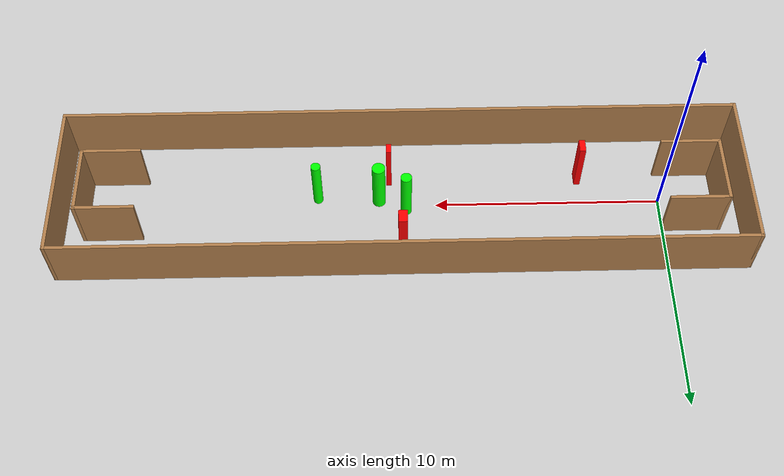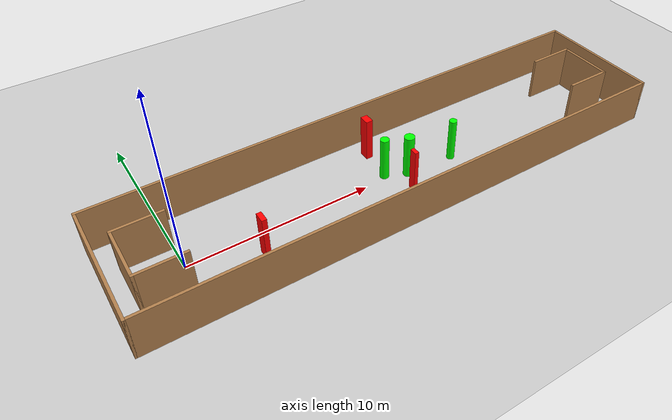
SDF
<sdf version="1.7">
 <world name="default">
  <light name="sun" type="directional">
   <pose>0 0 10 0 -0 0</pose>
   <diffuse>0.8 0.8 0.8 1</diffuse>
   <specular>0.2 0.2 0.2 1</specular>
   <attenuation>
    <range>1000</range>
    <constant>0.9</constant>
    <linear>0.01</linear>
    <quadratic>0.001</quadratic>
   </attenuation>
   <direction>-0.5 0.1 -0.9</direction>
   <spot><inner_angle>0</inner_angle><outer_angle>0</outer_angle><falloff>0</falloff></spot>
  </light>
  <model name="ground_plane">
   <static>1</static>
   <link name="link">
    <collision name="collision">
     <geometry><plane><normal>0 0 1</normal><size>100 100</size></plane></geometry>
     <surface>
      <contact><collide_bitmask>65535</collide_bitmask></contact>
      <friction><ode><mu>100</mu><mu2>50</mu2></ode></friction>
     </surface>
    </collision>
    <visual name="visual">
     <cast_shadows>0</cast_shadows>
     <geometry><plane><normal>0 0 1</normal><size>100 100</size></plane></geometry>
     <material>
      <script><uri>file://media/materials/scripts/gazebo.material</uri><name>Gazebo/Grey</name></script>
     </material>
    </visual>
   </link>
  </model>
  <gravity>0 0 -9.8</gravity>
  <magnetic_field>6e-06 2.3e-05 -4.2e-05</magnetic_field>
  <atmosphere type="adiabatic"/>
  <physics type="ode">
   <max_step_size>0.001</max_step_size>
   <real_time_factor>1</real_time_factor>
   <real_time_update_rate>1000</real_time_update_rate>
  </physics>
  <scene><ambient>0.4 0.4 0.4 1</ambient><background>0.7 0.7 0.7 1</background><shadows>1</shadows></scene>
  <spherical_coordinates>
   <surface_model>EARTH_WGS84</surface_model>
   <latitude_deg>0</latitude_deg>
   <longitude_deg>0</longitude_deg>
   <elevation>0</elevation>
   <heading_deg>0</heading_deg>
  </spherical_coordinates>
  <model name="my_base_walls">
   <link name="Wall_0">
    <collision name="Wall_0_Collision">
     <geometry><box><size>7.15 0.15 2.5</size></box></geometry>
     <pose>0 0 1.25 0 -0 0</pose>
    </collision>
    <visual name="Wall_0_Visual">
     <pose>0 0 1.25 0 -0 0</pose>
     <geometry><box><size>7.15 0.15 2.5</size></box></geometry>
     <material>
      <script><uri>file://media/materials/scripts/gazebo.material</uri><name>Gazebo/Wood</name></script>
      <ambient>1 1 1 1</ambient>
     </material>
     <meta><layer>0</layer></meta>
    </visual>
    <pose>-15 0 0 0 -0 1.5708</pose>
   </link>
   <link name="Wall_10">
    <collision name="Wall_10_Collision">
     <geometry><box><size>2.65 0.15 2.5</size></box></geometry>
     <pose>0 0 1.25 0 -0 0</pose>
    </collision>
    <visual name="Wall_10_Visual">
     <pose>0 0 1.25 0 -0 0</pose>
     <geometry><box><size>2.65 0.15 2.5</size></box></geometry>
     <material>
      <script><uri>file://media/materials/scripts/gazebo.material</uri><name>Gazebo/Wood</name></script>
      <ambient>1 1 1 1</ambient>
     </material>
     <meta><layer>0</layer></meta>
    </visual>
    <pose>-12.75 -1.5 0 0 -0 0</pose>
   </link>
   <link name="Wall_12">
    <collision name="Wall_12_Collision">
     <geometry><box><size>2.65 0.15 2.5</size></box></geometry>
     <pose>0 0 1.25 0 -0 0</pose>
    </collision>
    <visual name="Wall_12_Visual">
     <pose>0 0 1.25 0 -0 0</pose>
     <geometry><box><size>2.65 0.15 2.5</size></box></geometry>
     <material>
      <script><uri>file://media/materials/scripts/gazebo.material</uri><name>Gazebo/Wood</name></script>
      <ambient>1 1 1 1</ambient>
     </material>
     <meta><layer>0</layer></meta>
    </visual>
    <pose>-12.75 1.5 0 0 -0 0</pose>
   </link>
   <link name="Wall_14">
    <collision name="Wall_14_Collision">
     <geometry><box><size>3.15 0.15 2.5</size></box></geometry>
     <pose>0 0 1.25 0 -0 0</pose>
    </collision>
    <visual name="Wall_14_Visual">
     <pose>0 0 1.25 0 -0 0</pose>
     <geometry><box><size>3.15 0.15 2.5</size></box></geometry>
     <material>
      <script><uri>file://media/materials/scripts/gazebo.material</uri><name>Gazebo/Wood</name></script>
      <ambient>1 1 1 1</ambient>
     </material>
     <meta><layer>0</layer></meta>
    </visual>
    <pose>14 0 0 0 -0 -1.5708</pose>
   </link>
   <link name="Wall_15">
    <collision name="Wall_15_Collision">
     <geometry><box><size>2.65 0.15 2.5</size></box></geometry>
     <pose>0 0 1.25 0 -0 0</pose>
    </collision>
    <visual name="Wall_15_Visual">
     <pose>0 0 1.25 0 -0 0</pose>
     <geometry><box><size>2.65 0.15 2.5</size></box></geometry>
     <material>
      <script><uri>file://media/materials/scripts/gazebo.material</uri><name>Gazebo/Wood</name></script>
      <ambient>1 1 1 1</ambient>
     </material>
     <meta><layer>0</layer></meta>
    </visual>
    <pose>12.75 -1.5 0 0 -0 3.14159</pose>
   </link>
   <link name="Wall_17">
    <collision name="Wall_17_Collision">
     <geometry><box><size>2.65 0.15 2.5</size></box></geometry>
     <pose>0 0 1.25 0 -0 0</pose>
    </collision>
    <visual name="Wall_17_Visual">
     <pose>0 0 1.25 0 -0 0</pose>
     <geometry><box><size>2.65 0.15 2.5</size></box></geometry>
     <material>
      <script><uri>file://media/materials/scripts/gazebo.material</uri><name>Gazebo/Wood</name></script>
      <ambient>1 1 1 1</ambient>
     </material>
     <meta><layer>0</layer></meta>
    </visual>
    <pose>12.75 1.5 0 0 -0 3.14159</pose>
   </link>
   <link name="Wall_2">
    <collision name="Wall_2_Collision">
     <geometry><box><size>30.15 0.15 2.5</size></box></geometry>
     <pose>0 0 1.25 0 -0 0</pose>
    </collision>
    <visual name="Wall_2_Visual">
     <pose>0 0 1.25 0 -0 0</pose>
     <geometry><box><size>30.15 0.15 2.5</size></box></geometry>
     <material>
      <script><uri>file://media/materials/scripts/gazebo.material</uri><name>Gazebo/Wood</name></script>
      <ambient>1 1 1 1</ambient>
     </material>
     <meta><layer>0</layer></meta>
    </visual>
    <pose>-0 -3.5 0 0 -0 0</pose>
   </link>
   <link name="Wall_4">
    <collision name="Wall_4_Collision">
     <geometry><box><size>30.15 0.15 2.5</size></box></geometry>
     <pose>0 0 1.25 0 -0 0</pose>
    </collision>
    <visual name="Wall_4_Visual">
     <pose>0 0 1.25 0 -0 0</pose>
     <geometry><box><size>30.15 0.15 2.5</size></box></geometry>
     <material>
      <script><uri>file://media/materials/scripts/gazebo.material</uri><name>Gazebo/Wood</name></script>
      <ambient>1 1 1 1</ambient>
     </material>
     <meta><layer>0</layer></meta>
    </visual>
    <pose>-0 3.5 0 0 -0 0</pose>
   </link>
   <link name="Wall_6">
    <collision name="Wall_6_Collision">
     <geometry><box><size>7.15 0.15 2.5</size></box></geometry>
     <pose>0 0 1.25 0 -0 0</pose>
    </collision>
    <visual name="Wall_6_Visual">
     <pose>0 0 1.25 0 -0 0</pose>
     <geometry><box><size>7.15 0.15 2.5</size></box></geometry>
     <material>
      <script><uri>file://media/materials/scripts/gazebo.material</uri><name>Gazebo/Wood</name></script>
      <ambient>1 1 1 1</ambient>
     </material>
     <meta><layer>0</layer></meta>
    </visual>
    <pose>15 0 0 0 -0 -1.5708</pose>
   </link>
   <link name="Wall_9">
    <collision name="Wall_9_Collision">
     <geometry><box><size>3.15 0.15 2.5</size></box></geometry>
     <pose>0 0 1.25 0 -0 0</pose>
    </collision>
    <visual name="Wall_9_Visual">
     <pose>0 0 1.25 0 -0 0</pose>
     <geometry><box><size>3.15 0.15 2.5</size></box></geometry>
     <material>
      <script><uri>file://media/materials/scripts/gazebo.material</uri><name>Gazebo/Wood</name></script>
      <ambient>1 1 1 1</ambient>
     </material>
     <meta><layer>0</layer></meta>
    </visual>
    <pose>-14 0 0 0 -0 -1.5708</pose>
   </link>
   <static>1</static>
   <pose>11.5 0 0 0 -0 0</pose>
  </model>
  <model name="cylinder1">
   <static>1</static>
   <link name="link">
    <inertial>
     <mass>1</mass>
     <inertia><ixx>0.5</ixx><ixy>0</ixy><ixz>0</ixz><iyy>0.5</iyy><iyz>0</iyz><izz>1</izz></inertia>
    </inertial>
    <collision name="collision">
     <geometry><cylinder><radius>0.21147473615296125</radius><length>2.5</length></cylinder></geometry>
    </collision>
    <visual name="visual">
     <geometry><cylinder><radius>0.21147473615296125</radius><length>2.5</length></cylinder></geometry>
     <material>
      <ambient>0 1 0 1</ambient>
      <diffuse>0 1 0 1</diffuse>
      <specular>0.1 0.1 0.1 1</specular>
      <emissive>0 0 0 0</emissive>
     </material>
    </visual>
   </link>
   <pose>15.256051736078188 -0.42435479759674344 1.25 0 0 0</pose>
  </model>
  <model name="cylinder2">
   <static>1</static>
   <link name="link">
    <inertial>
     <mass>1</mass>
     <inertia><ixx>0.5</ixx><ixy>0</ixy><ixz>0</ixz><iyy>0.5</iyy><iyz>0</iyz><izz>1</izz></inertia>
    </inertial>
    <collision name="collision">
     <geometry><cylinder><radius>0.28896029518105326</radius><length>2.5</length></cylinder></geometry>
    </collision>
    <visual name="visual">
     <geometry><cylinder><radius>0.28896029518105326</radius><length>2.5</length></cylinder></geometry>
     <material>
      <ambient>0 1 0 1</ambient>
      <diffuse>0 1 0 1</diffuse>
      <specular>0.1 0.1 0.1 1</specular>
      <emissive>0 0 0 0</emissive>
     </material>
    </visual>
   </link>
   <pose>12.522857158138454 -0.27675637959533406 1.25 0 0 0</pose>
  </model>
  <model name="cylinder3">
   <static>1</static>
   <link name="link">
    <inertial>
     <mass>1</mass>
     <inertia><ixx>0.5</ixx><ixy>0</ixy><ixz>0</ixz><iyy>0.5</iyy><iyz>0</iyz><izz>1</izz></inertia>
    </inertial>
    <collision name="collision">
     <geometry><cylinder><radius>0.24449916186540105</radius><length>2.5</length></cylinder></geometry>
    </collision>
    <visual name="visual">
     <geometry><cylinder><radius>0.24449916186540105</radius><length>2.5</length></cylinder></geometry>
     <material>
      <ambient>0 1 0 1</ambient>
      <diffuse>0 1 0 1</diffuse>
      <specular>0.1 0.1 0.1 1</specular>
      <emissive>0 0 0 0</emissive>
     </material>
    </visual>
   </link>
   <pose>11.329817699509015 0.23995955674682 1.25 0 0 0</pose>
  </model>
  <model name="box1">
   <static>1</static>
   <link name="link">
    <inertial>
     <mass>1</mass>
     <inertia><ixx>0.083</ixx><ixy>0</ixy><ixz>0</ixz><iyy>0.083</iyy><iyz>0</iyz><izz>0.083</izz></inertia>
    </inertial>
    <collision name="collision">
     <geometry><box><size>0.26871198713690425 0.5889697368677409 2.5</size></box></geometry>
    </collision>
    <visual name="visual">
     <geometry><box><size>0.26871198713690425 0.5889697368677409 2.5</size></box></geometry>
     <material>
      <ambient>1 0 0 1</ambient>
      <diffuse>1 0 0 1</diffuse>
      <specular>0.1 0.1 0.1 1</specular>
      <emissive>0 0 0 0</emissive>
     </material>
    </visual>
    <sensor name="my_contact" type="contact">
     <contact><collision>box_collision</collision><topic>__default_topic__</topic></contact>
    </sensor>
   </link>
   <pose>3.551655055751297 -1.331566923165881 1.25 0 0 0</pose>
  </model>
  <model name="box2">
   <static>1</static>
   <link name="link">
    <inertial>
     <mass>1</mass>
     <inertia><ixx>0.083</ixx><ixy>0</ixy><ixz>0</ixz><iyy>0.083</iyy><iyz>0</iyz><izz>0.083</izz></inertia>
    </inertial>
    <collision name="collision">
     <geometry><box><size>0.39610227009910026 0.576919748350768 2.5</size></box></geometry>
    </collision>
    <visual name="visual">
     <geometry><box><size>0.39610227009910026 0.576919748350768 2.5</size></box></geometry>
     <material>
      <ambient>1 0 0 1</ambient>
      <diffuse>1 0 0 1</diffuse>
      <specular>0.1 0.1 0.1 1</specular>
      <emissive>0 0 0 0</emissive>
     </material>
    </visual>
    <sensor name="my_contact" type="contact">
     <contact><collision>box_collision</collision><topic>__default_topic__</topic></contact>
    </sensor>
   </link>
   <pose>11.502711835699051 2.2219884932419536 1.25 0 0 0</pose>
  </model>
  <model name="box3">
   <static>1</static>
   <link name="link">
    <inertial>
     <mass>1</mass>
     <inertia><ixx>0.083</ixx><ixy>0</ixy><ixz>0</ixz><iyy>0.083</iyy><iyz>0</iyz><izz>0.083</izz></inertia>
    </inertial>
    <collision name="collision">
     <geometry><box><size>0.22221782263140732 0.4259557000969363 2.5</size></box></geometry>
    </collision>
    <visual name="visual">
     <geometry><box><size>0.22221782263140732 0.4259557000969363 2.5</size></box></geometry>
     <material>
      <ambient>1 0 0 1</ambient>
      <diffuse>1 0 0 1</diffuse>
      <specular>0.1 0.1 0.1 1</specular>
      <emissive>0 0 0 0</emissive>
     </material>
    </visual>
    <sensor name="my_contact" type="contact">
     <contact><collision>box_collision</collision><topic>__default_topic__</topic></contact>
    </sensor>
   </link>
   <pose>12.070855075360347 -1.3615461210233186 1.25 0 0 0</pose>
  </model>
 </world>
</sdf>
